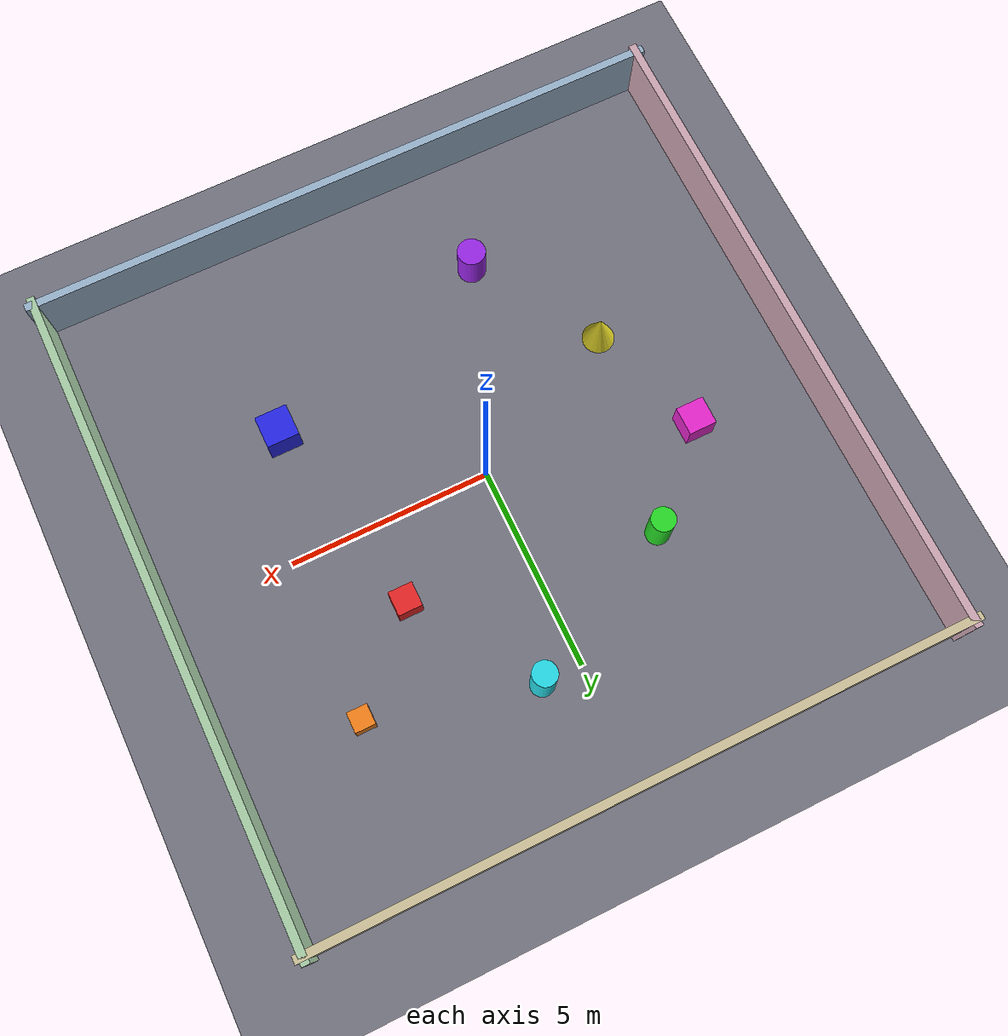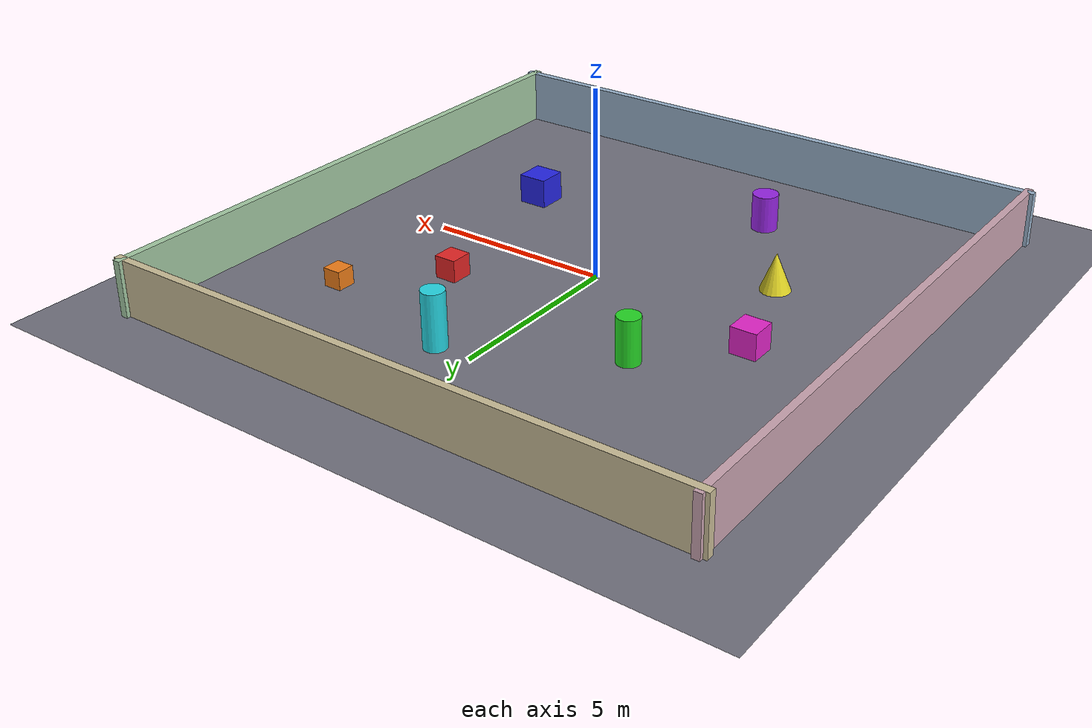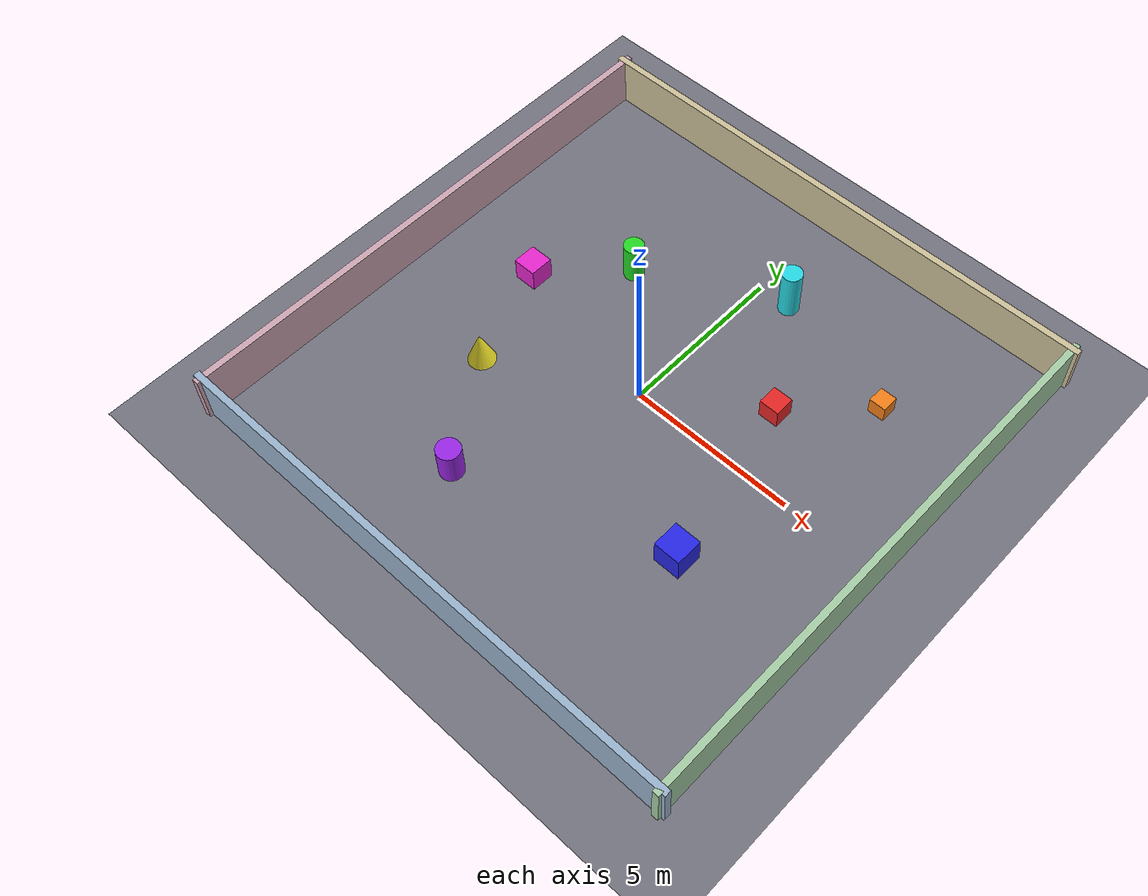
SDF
<?xml version="1.0"?>
<sdf version='1.10'>
  <world name='empty'>
    <physics name='1ms' type='ignored'>
      <max_step_size>0.001</max_step_size>
      <real_time_factor>1</real_time_factor>
      <real_time_update_rate>1000</real_time_update_rate>
    </physics>

    <plugin name='gz::sim::systems::Physics' filename='gz-sim-physics-system'/>
    <plugin name='gz::sim::systems::UserCommands' filename='gz-sim-user-commands-system'/>
    <plugin name='gz::sim::systems::SceneBroadcaster' filename='gz-sim-scene-broadcaster-system'/>
    <plugin name='gz::sim::systems::Contact' filename='gz-sim-contact-system'/>
    <plugin name='gz::sim::systems::Sensors' filename='gz-sim-sensors-system'>
      <render_engine>ogre2</render_engine>
    </plugin>
    <plugin name='gz::sim::systems::Imu' filename='gz-sim-imu-system'/>

    <gravity>0 0 -9.8</gravity>
    <magnetic_field>5.5645e-06 2.28758e-05 -4.23884e-05</magnetic_field>
    <atmosphere type='adiabatic'/>
    <scene>
      <ambient>0.4 0.4 0.4 1</ambient>
      <background>0.7 0.8 0.9 1</background>
      <shadows>true</shadows>
    </scene>

    <!-- ===================== Ground ===================== -->
    <model name='ground_plane'>
      <static>true</static>
      <link name='link'>
        <collision name='collision'>
          <geometry>
            <plane><normal>0 0 1</normal><size>100 100</size></plane>
          </geometry>
          <surface><friction><ode/></friction><bounce/><contact/></surface>
        </collision>
        <visual name='visual'>
          <geometry>
            <plane><normal>0 0 1</normal><size>100 100</size></plane>
          </geometry>
          <material>
            <ambient>0.35 0.35 0.38 1</ambient>
            <diffuse>0.45 0.45 0.5 1</diffuse>
            <specular>0.2 0.2 0.2 1</specular>
          </material>
        </visual>
      </link>
    </model>

    <!-- ===================== Bounding walls (16 x 16 room) ===================== -->
    <model name='wall_north'>
      <static>true</static>
      <pose>0 8 0.75 0 0 0</pose>
      <link name='link'>
        <collision name='c'><geometry><box><size>16.4 0.2 1.5</size></box></geometry></collision>
        <visual name='v'><geometry><box><size>16.4 0.2 1.5</size></box></geometry>
          <material><ambient>0.7 0.65 0.55 1</ambient><diffuse>0.8 0.75 0.6 1</diffuse><specular>0.2 0.2 0.2 1</specular></material>
        </visual>
      </link>
    </model>
    <model name='wall_south'>
      <static>true</static>
      <pose>0 -8 0.75 0 0 0</pose>
      <link name='link'>
        <collision name='c'><geometry><box><size>16.4 0.2 1.5</size></box></geometry></collision>
        <visual name='v'><geometry><box><size>16.4 0.2 1.5</size></box></geometry>
          <material><ambient>0.55 0.6 0.7 1</ambient><diffuse>0.6 0.7 0.8 1</diffuse><specular>0.2 0.2 0.2 1</specular></material>
        </visual>
      </link>
    </model>
    <model name='wall_east'>
      <static>true</static>
      <pose>8 0 0.75 0 0 0</pose>
      <link name='link'>
        <collision name='c'><geometry><box><size>0.2 16.4 1.5</size></box></geometry></collision>
        <visual name='v'><geometry><box><size>0.2 16.4 1.5</size></box></geometry>
          <material><ambient>0.6 0.7 0.6 1</ambient><diffuse>0.65 0.8 0.65 1</diffuse><specular>0.2 0.2 0.2 1</specular></material>
        </visual>
      </link>
    </model>
    <model name='wall_west'>
      <static>true</static>
      <pose>-8 0 0.75 0 0 0</pose>
      <link name='link'>
        <collision name='c'><geometry><box><size>0.2 16.4 1.5</size></box></geometry></collision>
        <visual name='v'><geometry><box><size>0.2 16.4 1.5</size></box></geometry>
          <material><ambient>0.7 0.6 0.65 1</ambient><diffuse>0.8 0.65 0.7 1</diffuse><specular>0.2 0.2 0.2 1</specular></material>
        </visual>
      </link>
    </model>

    <!-- ===================== Distinctly-colored feature pillars ===================== -->
    <model name='pillar_red'>
      <static>true</static>
      <pose>3 2 0.3 0 0 0</pose>
      <link name='link'>
        <collision name='c'><geometry><box><size>0.6 0.6 0.6</size></box></geometry></collision>
        <visual name='v'><geometry><box><size>0.6 0.6 0.6</size></box></geometry>
          <material><ambient>0.6 0.1 0.1 1</ambient><diffuse>0.9 0.15 0.15 1</diffuse><specular>0.3 0.3 0.3 1</specular></material>
        </visual>
      </link>
    </model>
    <model name='pillar_green'>
      <static>true</static>
      <pose>-3 3 0.6 0 0 0</pose>
      <link name='link'>
        <collision name='c'><geometry><cylinder><radius>0.3</radius><length>1.2</length></cylinder></geometry></collision>
        <visual name='v'><geometry><cylinder><radius>0.3</radius><length>1.2</length></cylinder></geometry>
          <material><ambient>0.1 0.5 0.1 1</ambient><diffuse>0.15 0.85 0.15 1</diffuse><specular>0.3 0.3 0.3 1</specular></material>
        </visual>
      </link>
    </model>
    <model name='pillar_blue'>
      <static>true</static>
      <pose>4 -3 0.4 0 0 0</pose>
      <link name='link'>
        <collision name='c'><geometry><box><size>0.8 0.8 0.8</size></box></geometry></collision>
        <visual name='v'><geometry><box><size>0.8 0.8 0.8</size></box></geometry>
          <material><ambient>0.1 0.1 0.6 1</ambient><diffuse>0.15 0.15 0.9 1</diffuse><specular>0.3 0.3 0.3 1</specular></material>
        </visual>
      </link>
    </model>
    <model name='pillar_yellow'>
      <static>true</static>
      <pose>-4 -2 0.5 0 0 0</pose>
      <link name='link'>
        <collision name='c'><geometry><cone><radius>0.4</radius><length>1.0</length></cone></geometry></collision>
        <visual name='v'><geometry><cone><radius>0.4</radius><length>1.0</length></cone></geometry>
          <material><ambient>0.6 0.55 0.1 1</ambient><diffuse>0.9 0.85 0.15 1</diffuse><specular>0.3 0.3 0.3 1</specular></material>
        </visual>
      </link>
    </model>
    <model name='pillar_cyan'>
      <static>true</static>
      <pose>1 5 0.75 0 0 0</pose>
      <link name='link'>
        <collision name='c'><geometry><cylinder><radius>0.3</radius><length>1.5</length></cylinder></geometry></collision>
        <visual name='v'><geometry><cylinder><radius>0.3</radius><length>1.5</length></cylinder></geometry>
          <material><ambient>0.1 0.55 0.6 1</ambient><diffuse>0.15 0.85 0.9 1</diffuse><specular>0.3 0.3 0.3 1</specular></material>
        </visual>
      </link>
    </model>
    <model name='pillar_magenta'>
      <static>true</static>
      <pose>-5 1 0.35 0 0 0</pose>
      <link name='link'>
        <collision name='c'><geometry><box><size>0.7 0.7 0.7</size></box></geometry></collision>
        <visual name='v'><geometry><box><size>0.7 0.7 0.7</size></box></geometry>
          <material><ambient>0.6 0.1 0.5 1</ambient><diffuse>0.9 0.15 0.8 1</diffuse><specular>0.3 0.3 0.3 1</specular></material>
        </visual>
      </link>
    </model>
    <model name='pillar_orange'>
      <static>true</static>
      <pose>5 4 0.25 0 0 0</pose>
      <link name='link'>
        <collision name='c'><geometry><box><size>0.5 0.5 0.5</size></box></geometry></collision>
        <visual name='v'><geometry><box><size>0.5 0.5 0.5</size></box></geometry>
          <material><ambient>0.65 0.35 0.05 1</ambient><diffuse>0.95 0.5 0.1 1</diffuse><specular>0.3 0.3 0.3 1</specular></material>
        </visual>
      </link>
    </model>
    <model name='pillar_purple'>
      <static>true</static>
      <pose>-2 -5 0.5 0 0 0</pose>
      <link name='link'>
        <collision name='c'><geometry><cylinder><radius>0.35</radius><length>1.0</length></cylinder></geometry></collision>
        <visual name='v'><geometry><cylinder><radius>0.35</radius><length>1.0</length></cylinder></geometry>
          <material><ambient>0.4 0.1 0.6 1</ambient><diffuse>0.6 0.15 0.9 1</diffuse><specular>0.3 0.3 0.3 1</specular></material>
        </visual>
      </link>
    </model>

    <!-- ===================== Sun ===================== -->
    <light name='sun' type='directional'>
      <pose>0 0 10 0 0 0</pose>
      <cast_shadows>true</cast_shadows>
      <intensity>1</intensity>
      <direction>-0.5 0.1 -0.9</direction>
      <diffuse>0.8 0.8 0.8 1</diffuse>
      <specular>0.2 0.2 0.2 1</specular>
      <attenuation>
        <range>1000</range>
        <linear>0.01</linear>
        <constant>0.9</constant>
        <quadratic>0.001</quadratic>
      </attenuation>
      <spot><inner_angle>0</inner_angle><outer_angle>0</outer_angle><falloff>0</falloff></spot>
    </light>
  </world>
</sdf>
